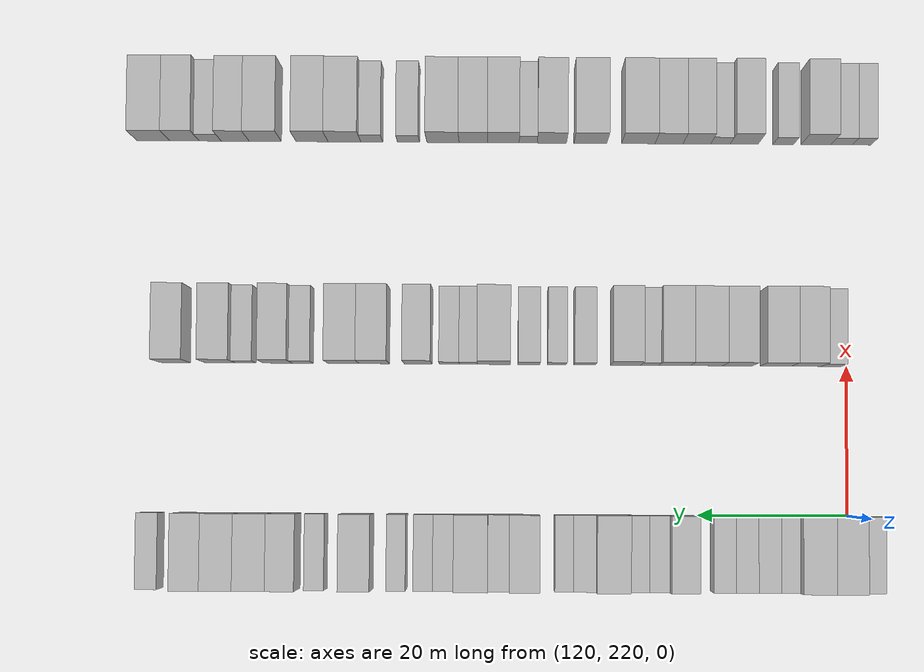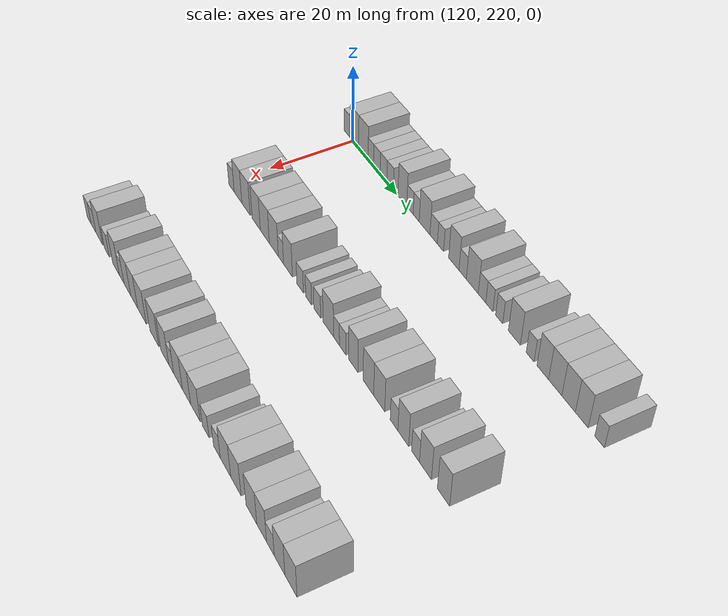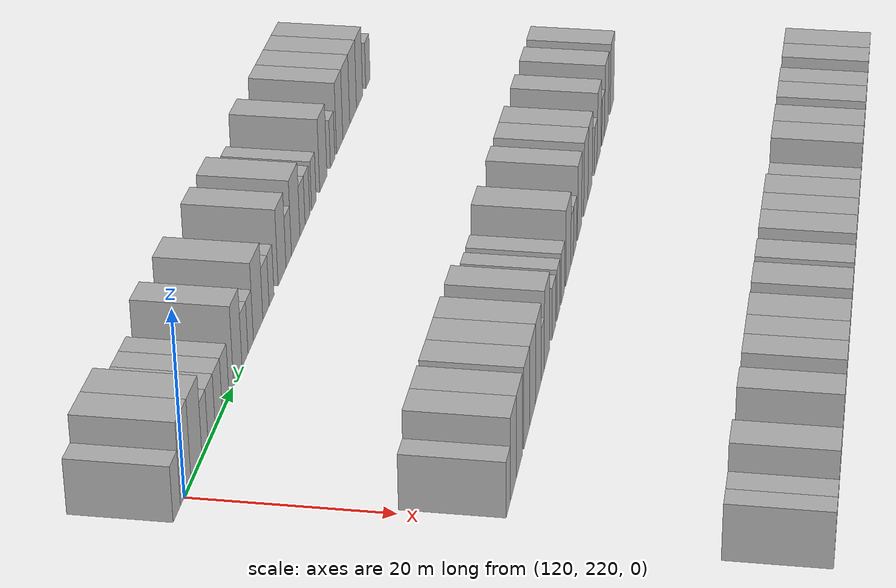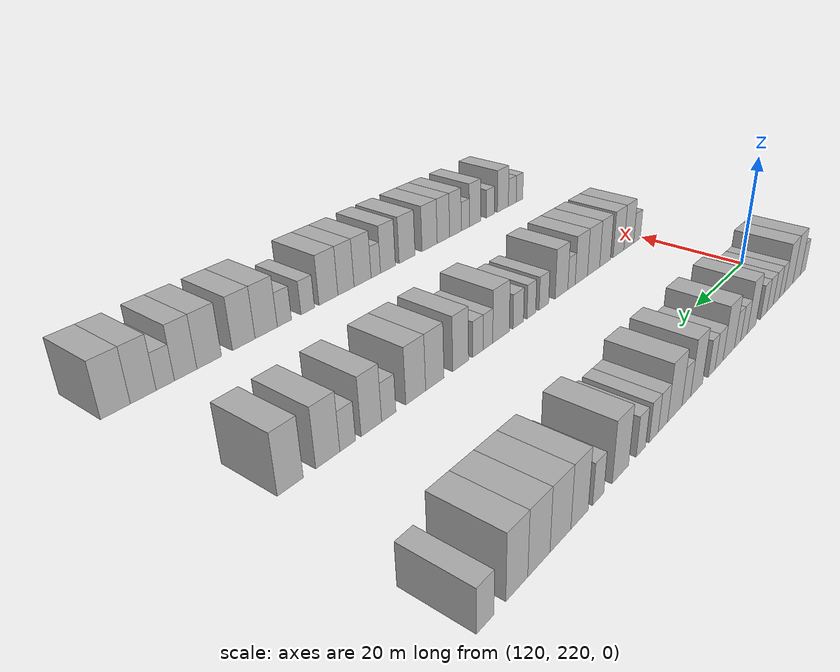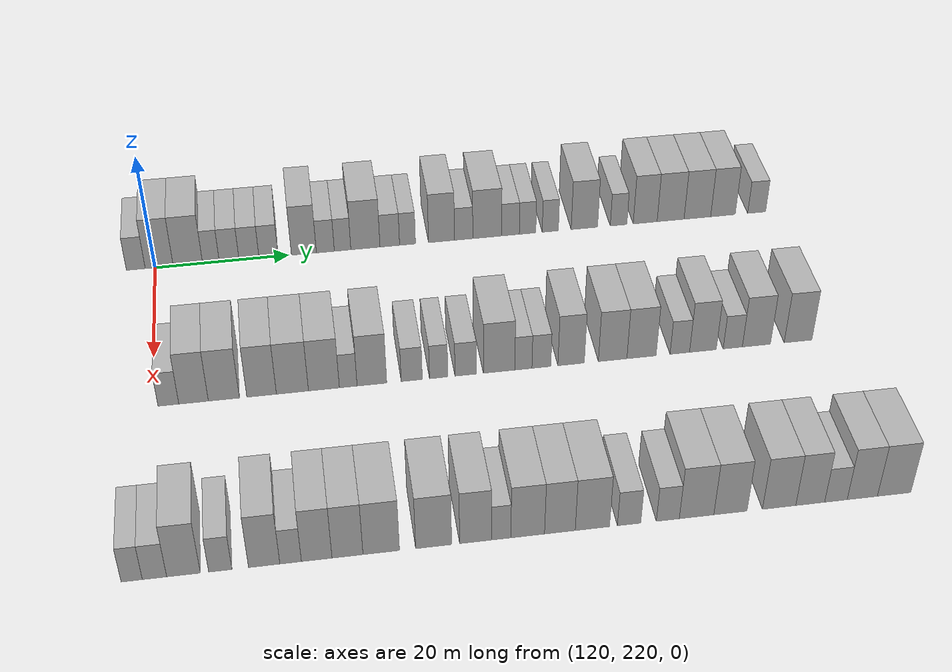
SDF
<sdf version="1.6">
 <world name="default">
  <model name="building_846">
   <static>1</static>
   <pose>115.0000 217.1737 0 0.000000 0.000000 0.000000</pose>
   <link name="link">
    <pose>0 0 3.00 0 0 0</pose>
    <collision name="collision"><geometry><box><size>10.0000 2.7691 6.0000</size></box></geometry></collision>
    <visual name="visual">
     <cast_shadows>0</cast_shadows>
     <geometry><box><size>10.0000 2.7691 6.0000</size></box></geometry>
     <material>
      <script>
       <uri>model://HANNAS_wall/materials/scripts</uri>
       <uri>model://HANNAS_wall/materials/textures</uri>
       <name>vrc/HANNAS_wall</name>
      </script>
     </material>
    </visual>
   </link>
  </model>
  <model name="building_847">
   <static>1</static>
   <pose>115.0000 220.6218 0 0.000000 0.000000 0.000000</pose>
   <link name="link">
    <pose>0 0 4.50 0 0 0</pose>
    <collision name="collision"><geometry><box><size>10.0000 4.1270 9.0000</size></box></geometry></collision>
    <visual name="visual">
     <cast_shadows>0</cast_shadows>
     <geometry><box><size>10.0000 4.1270 9.0000</size></box></geometry>
     <material>
      <script>
       <uri>model://HANNAS_wall/materials/scripts</uri>
       <uri>model://HANNAS_wall/materials/textures</uri>
       <name>vrc/HANNAS_wall</name>
      </script>
     </material>
    </visual>
   </link>
  </model>
  <model name="building_848">
   <static>1</static>
   <pose>115.0000 224.8613 0 0.000000 0.000000 0.000000</pose>
   <link name="link">
    <pose>0 0 4.50 0 0 0</pose>
    <collision name="collision"><geometry><box><size>10.0000 4.3520 9.0000</size></box></geometry></collision>
    <visual name="visual">
     <cast_shadows>0</cast_shadows>
     <geometry><box><size>10.0000 4.3520 9.0000</size></box></geometry>
     <material>
      <script>
       <uri>model://HANNAS_wall/materials/scripts</uri>
       <uri>model://HANNAS_wall/materials/textures</uri>
       <name>vrc/HANNAS_wall</name>
      </script>
     </material>
    </visual>
   </link>
  </model>
  <model name="building_849">
   <static>1</static>
   <pose>115.0000 228.2766 0 0.000000 0.000000 0.000000</pose>
   <link name="link">
    <pose>0 0 3.00 0 0 0</pose>
    <collision name="collision"><geometry><box><size>10.0000 2.4786 6.0000</size></box></geometry></collision>
    <visual name="visual">
     <cast_shadows>0</cast_shadows>
     <geometry><box><size>10.0000 2.4786 6.0000</size></box></geometry>
     <material>
      <script>
       <uri>model://HANNAS_wall/materials/scripts</uri>
       <uri>model://HANNAS_wall/materials/textures</uri>
       <name>vrc/HANNAS_wall</name>
      </script>
     </material>
    </visual>
   </link>
  </model>
  <model name="building_850">
   <static>1</static>
   <pose>115.0000 230.9907 0 0.000000 0.000000 0.000000</pose>
   <link name="link">
    <pose>0 0 3.00 0 0 0</pose>
    <collision name="collision"><geometry><box><size>10.0000 2.9495 6.0000</size></box></geometry></collision>
    <visual name="visual">
     <cast_shadows>0</cast_shadows>
     <geometry><box><size>10.0000 2.9495 6.0000</size></box></geometry>
     <material>
      <script>
       <uri>model://HANNAS_wall/materials/scripts</uri>
       <uri>model://HANNAS_wall/materials/textures</uri>
       <name>vrc/HANNAS_wall</name>
      </script>
     </material>
    </visual>
   </link>
  </model>
  <model name="building_851">
   <static>1</static>
   <pose>115.0000 233.9601 0 0.000000 0.000000 0.000000</pose>
   <link name="link">
    <pose>0 0 3.00 0 0 0</pose>
    <collision name="collision"><geometry><box><size>10.0000 2.9893 6.0000</size></box></geometry></collision>
    <visual name="visual">
     <cast_shadows>0</cast_shadows>
     <geometry><box><size>10.0000 2.9893 6.0000</size></box></geometry>
     <material>
      <script>
       <uri>model://HANNAS_wall/materials/scripts</uri>
       <uri>model://HANNAS_wall/materials/textures</uri>
       <name>vrc/HANNAS_wall</name>
      </script>
     </material>
    </visual>
   </link>
  </model>
  <model name="building_852">
   <static>1</static>
   <pose>115.0000 236.8845 0 0.000000 0.000000 0.000000</pose>
   <link name="link">
    <pose>0 0 3.00 0 0 0</pose>
    <collision name="collision"><geometry><box><size>10.0000 2.8595 6.0000</size></box></geometry></collision>
    <visual name="visual">
     <cast_shadows>0</cast_shadows>
     <geometry><box><size>10.0000 2.8595 6.0000</size></box></geometry>
     <material>
      <script>
       <uri>model://HANNAS_wall/materials/scripts</uri>
       <uri>model://HANNAS_wall/materials/textures</uri>
       <name>vrc/HANNAS_wall</name>
      </script>
     </material>
    </visual>
   </link>
  </model>
  <model name="building_853">
   <static>1</static>
   <pose>115.0000 242.1926 0 0.000000 0.000000 0.000000</pose>
   <link name="link">
    <pose>0 0 4.50 0 0 0</pose>
    <collision name="collision"><geometry><box><size>10.0000 3.7566 9.0000</size></box></geometry></collision>
    <visual name="visual">
     <cast_shadows>0</cast_shadows>
     <geometry><box><size>10.0000 3.7566 9.0000</size></box></geometry>
     <material>
      <script>
       <uri>model://HANNAS_wall/materials/scripts</uri>
       <uri>model://HANNAS_wall/materials/textures</uri>
       <name>vrc/HANNAS_wall</name>
      </script>
     </material>
    </visual>
   </link>
  </model>
  <model name="building_854">
   <static>1</static>
   <pose>115.0000 245.4258 0 0.000000 0.000000 0.000000</pose>
   <link name="link">
    <pose>0 0 3.00 0 0 0</pose>
    <collision name="collision"><geometry><box><size>10.0000 2.7099 6.0000</size></box></geometry></collision>
    <visual name="visual">
     <cast_shadows>0</cast_shadows>
     <geometry><box><size>10.0000 2.7099 6.0000</size></box></geometry>
     <material>
      <script>
       <uri>model://HANNAS_wall/materials/scripts</uri>
       <uri>model://HANNAS_wall/materials/textures</uri>
       <name>vrc/HANNAS_wall</name>
      </script>
     </material>
    </visual>
   </link>
  </model>
  <model name="building_855">
   <static>1</static>
   <pose>115.0000 248.0321 0 0.000000 0.000000 0.000000</pose>
   <link name="link">
    <pose>0 0 3.00 0 0 0</pose>
    <collision name="collision"><geometry><box><size>10.0000 2.5027 6.0000</size></box></geometry></collision>
    <visual name="visual">
     <cast_shadows>0</cast_shadows>
     <geometry><box><size>10.0000 2.5027 6.0000</size></box></geometry>
     <material>
      <script>
       <uri>model://HANNAS_wall/materials/scripts</uri>
       <uri>model://HANNAS_wall/materials/textures</uri>
       <name>vrc/HANNAS_wall</name>
      </script>
     </material>
    </visual>
   </link>
  </model>
  <model name="building_856">
   <static>1</static>
   <pose>115.0000 251.4940 0 0.000000 0.000000 0.000000</pose>
   <link name="link">
    <pose>0 0 4.50 0 0 0</pose>
    <collision name="collision"><geometry><box><size>10.0000 4.4212 9.0000</size></box></geometry></collision>
    <visual name="visual">
     <cast_shadows>0</cast_shadows>
     <geometry><box><size>10.0000 4.4212 9.0000</size></box></geometry>
     <material>
      <script>
       <uri>model://HANNAS_wall/materials/scripts</uri>
       <uri>model://HANNAS_wall/materials/textures</uri>
       <name>vrc/HANNAS_wall</name>
      </script>
     </material>
    </visual>
   </link>
  </model>
  <model name="building_857">
   <static>1</static>
   <pose>115.0000 255.1983 0 0.000000 0.000000 0.000000</pose>
   <link name="link">
    <pose>0 0 3.00 0 0 0</pose>
    <collision name="collision"><geometry><box><size>10.0000 2.9873 6.0000</size></box></geometry></collision>
    <visual name="visual">
     <cast_shadows>0</cast_shadows>
     <geometry><box><size>10.0000 2.9873 6.0000</size></box></geometry>
     <material>
      <script>
       <uri>model://HANNAS_wall/materials/scripts</uri>
       <uri>model://HANNAS_wall/materials/textures</uri>
       <name>vrc/HANNAS_wall</name>
      </script>
     </material>
    </visual>
   </link>
  </model>
  <model name="building_858">
   <static>1</static>
   <pose>115.0000 257.9084 0 0.000000 0.000000 0.000000</pose>
   <link name="link">
    <pose>0 0 3.00 0 0 0</pose>
    <collision name="collision"><geometry><box><size>10.0000 2.4329 6.0000</size></box></geometry></collision>
    <visual name="visual">
     <cast_shadows>0</cast_shadows>
     <geometry><box><size>10.0000 2.4329 6.0000</size></box></geometry>
     <material>
      <script>
       <uri>model://HANNAS_wall/materials/scripts</uri>
       <uri>model://HANNAS_wall/materials/textures</uri>
       <name>vrc/HANNAS_wall</name>
      </script>
     </material>
    </visual>
   </link>
  </model>
  <model name="building_859">
   <static>1</static>
   <pose>115.0000 263.1187 0 0.000000 0.000000 0.000000</pose>
   <link name="link">
    <pose>0 0 4.50 0 0 0</pose>
    <collision name="collision"><geometry><box><size>10.0000 3.9876 9.0000</size></box></geometry></collision>
    <visual name="visual">
     <cast_shadows>0</cast_shadows>
     <geometry><box><size>10.0000 3.9876 9.0000</size></box></geometry>
     <material>
      <script>
       <uri>model://HANNAS_wall/materials/scripts</uri>
       <uri>model://HANNAS_wall/materials/textures</uri>
       <name>vrc/HANNAS_wall</name>
      </script>
     </material>
    </visual>
   </link>
  </model>
  <model name="building_860">
   <static>1</static>
   <pose>115.0000 266.5162 0 0.000000 0.000000 0.000000</pose>
   <link name="link">
    <pose>0 0 3.00 0 0 0</pose>
    <collision name="collision"><geometry><box><size>10.0000 2.8076 6.0000</size></box></geometry></collision>
    <visual name="visual">
     <cast_shadows>0</cast_shadows>
     <geometry><box><size>10.0000 2.8076 6.0000</size></box></geometry>
     <material>
      <script>
       <uri>model://HANNAS_wall/materials/scripts</uri>
       <uri>model://HANNAS_wall/materials/textures</uri>
       <name>vrc/HANNAS_wall</name>
      </script>
     </material>
    </visual>
   </link>
  </model>
  <model name="building_861">
   <static>1</static>
   <pose>115.0000 270.1420 0 0.000000 0.000000 0.000000</pose>
   <link name="link">
    <pose>0 0 4.50 0 0 0</pose>
    <collision name="collision"><geometry><box><size>10.0000 4.4441 9.0000</size></box></geometry></collision>
    <visual name="visual">
     <cast_shadows>0</cast_shadows>
     <geometry><box><size>10.0000 4.4441 9.0000</size></box></geometry>
     <material>
      <script>
       <uri>model://HANNAS_wall/materials/scripts</uri>
       <uri>model://HANNAS_wall/materials/textures</uri>
       <name>vrc/HANNAS_wall</name>
      </script>
     </material>
    </visual>
   </link>
  </model>
  <model name="building_862">
   <static>1</static>
   <pose>115.0000 273.7424 0 0.000000 0.000000 0.000000</pose>
   <link name="link">
    <pose>0 0 3.00 0 0 0</pose>
    <collision name="collision"><geometry><box><size>10.0000 2.7567 6.0000</size></box></geometry></collision>
    <visual name="visual">
     <cast_shadows>0</cast_shadows>
     <geometry><box><size>10.0000 2.7567 6.0000</size></box></geometry>
     <material>
      <script>
       <uri>model://HANNAS_wall/materials/scripts</uri>
       <uri>model://HANNAS_wall/materials/textures</uri>
       <name>vrc/HANNAS_wall</name>
      </script>
     </material>
    </visual>
   </link>
  </model>
  <model name="building_863">
   <static>1</static>
   <pose>115.0000 276.4007 0 0.000000 0.000000 0.000000</pose>
   <link name="link">
    <pose>0 0 3.00 0 0 0</pose>
    <collision name="collision"><geometry><box><size>10.0000 2.5599 6.0000</size></box></geometry></collision>
    <visual name="visual">
     <cast_shadows>0</cast_shadows>
     <geometry><box><size>10.0000 2.5599 6.0000</size></box></geometry>
     <material>
      <script>
       <uri>model://HANNAS_wall/materials/scripts</uri>
       <uri>model://HANNAS_wall/materials/textures</uri>
       <name>vrc/HANNAS_wall</name>
      </script>
     </material>
    </visual>
   </link>
  </model>
  <model name="building_864">
   <static>1</static>
   <pose>115.0000 279.9409 0 0.000000 0.000000 0.000000</pose>
   <link name="link">
    <pose>0 0 3.00 0 0 0</pose>
    <collision name="collision"><geometry><box><size>10.0000 2.5206 6.0000</size></box></geometry></collision>
    <visual name="visual">
     <cast_shadows>0</cast_shadows>
     <geometry><box><size>10.0000 2.5206 6.0000</size></box></geometry>
     <material>
      <script>
       <uri>model://HANNAS_wall/materials/scripts</uri>
       <uri>model://HANNAS_wall/materials/textures</uri>
       <name>vrc/HANNAS_wall</name>
      </script>
     </material>
    </visual>
   </link>
  </model>
  <model name="building_865">
   <static>1</static>
   <pose>115.0000 285.2702 0 0.000000 0.000000 0.000000</pose>
   <link name="link">
    <pose>0 0 4.50 0 0 0</pose>
    <collision name="collision"><geometry><box><size>10.0000 4.1380 9.0000</size></box></geometry></collision>
    <visual name="visual">
     <cast_shadows>0</cast_shadows>
     <geometry><box><size>10.0000 4.1380 9.0000</size></box></geometry>
     <material>
      <script>
       <uri>model://HANNAS_wall/materials/scripts</uri>
       <uri>model://HANNAS_wall/materials/textures</uri>
       <name>vrc/HANNAS_wall</name>
      </script>
     </material>
    </visual>
   </link>
  </model>
  <model name="building_866">
   <static>1</static>
   <pose>115.0000 290.6449 0 0.000000 0.000000 0.000000</pose>
   <link name="link">
    <pose>0 0 3.00 0 0 0</pose>
    <collision name="collision"><geometry><box><size>10.0000 2.6115 6.0000</size></box></geometry></collision>
    <visual name="visual">
     <cast_shadows>0</cast_shadows>
     <geometry><box><size>10.0000 2.6115 6.0000</size></box></geometry>
     <material>
      <script>
       <uri>model://HANNAS_wall/materials/scripts</uri>
       <uri>model://HANNAS_wall/materials/textures</uri>
       <name>vrc/HANNAS_wall</name>
      </script>
     </material>
    </visual>
   </link>
  </model>
  <model name="building_867">
   <static>1</static>
   <pose>115.0000 294.8424 0 0.000000 0.000000 0.000000</pose>
   <link name="link">
    <pose>0 0 4.50 0 0 0</pose>
    <collision name="collision"><geometry><box><size>10.0000 3.7835 9.0000</size></box></geometry></collision>
    <visual name="visual">
     <cast_shadows>0</cast_shadows>
     <geometry><box><size>10.0000 3.7835 9.0000</size></box></geometry>
     <material>
      <script>
       <uri>model://HANNAS_wall/materials/scripts</uri>
       <uri>model://HANNAS_wall/materials/textures</uri>
       <name>vrc/HANNAS_wall</name>
      </script>
     </material>
    </visual>
   </link>
  </model>
  <model name="building_868">
   <static>1</static>
   <pose>115.0000 298.8709 0 0.000000 0.000000 0.000000</pose>
   <link name="link">
    <pose>0 0 4.50 0 0 0</pose>
    <collision name="collision"><geometry><box><size>10.0000 4.2735 9.0000</size></box></geometry></collision>
    <visual name="visual">
     <cast_shadows>0</cast_shadows>
     <geometry><box><size>10.0000 4.2735 9.0000</size></box></geometry>
     <material>
      <script>
       <uri>model://HANNAS_wall/materials/scripts</uri>
       <uri>model://HANNAS_wall/materials/textures</uri>
       <name>vrc/HANNAS_wall</name>
      </script>
     </material>
    </visual>
   </link>
  </model>
  <model name="building_869">
   <static>1</static>
   <pose>115.0000 303.1274 0 0.000000 0.000000 0.000000</pose>
   <link name="link">
    <pose>0 0 4.50 0 0 0</pose>
    <collision name="collision"><geometry><box><size>10.0000 4.2394 9.0000</size></box></geometry></collision>
    <visual name="visual">
     <cast_shadows>0</cast_shadows>
     <geometry><box><size>10.0000 4.2394 9.0000</size></box></geometry>
     <material>
      <script>
       <uri>model://HANNAS_wall/materials/scripts</uri>
       <uri>model://HANNAS_wall/materials/textures</uri>
       <name>vrc/HANNAS_wall</name>
      </script>
     </material>
    </visual>
   </link>
  </model>
  <model name="building_870">
   <static>1</static>
   <pose>115.0000 307.2110 0 0.000000 0.000000 0.000000</pose>
   <link name="link">
    <pose>0 0 4.50 0 0 0</pose>
    <collision name="collision"><geometry><box><size>10.0000 3.9279 9.0000</size></box></geometry></collision>
    <visual name="visual">
     <cast_shadows>0</cast_shadows>
     <geometry><box><size>10.0000 3.9279 9.0000</size></box></geometry>
     <material>
      <script>
       <uri>model://HANNAS_wall/materials/scripts</uri>
       <uri>model://HANNAS_wall/materials/textures</uri>
       <name>vrc/HANNAS_wall</name>
      </script>
     </material>
    </visual>
   </link>
  </model>
  <model name="building_871">
   <static>1</static>
   <pose>115.0000 312.6115 0 0.000000 0.000000 0.000000</pose>
   <link name="link">
    <pose>0 0 3.00 0 0 0</pose>
    <collision name="collision"><geometry><box><size>10.0000 2.8730 6.0000</size></box></geometry></collision>
    <visual name="visual">
     <cast_shadows>0</cast_shadows>
     <geometry><box><size>10.0000 2.8730 6.0000</size></box></geometry>
     <material>
      <script>
       <uri>model://HANNAS_wall/materials/scripts</uri>
       <uri>model://HANNAS_wall/materials/textures</uri>
       <name>vrc/HANNAS_wall</name>
      </script>
     </material>
    </visual>
   </link>
  </model>
  <model name="building_1087">
   <static>1</static>
   <pose>145.0000 222.0685 0 0.000000 0.000000 0.000000</pose>
   <link name="link">
    <pose>0 0 3.00 0 0 0</pose>
    <collision name="collision"><geometry><box><size>10.0000 2.7782 6.0000</size></box></geometry></collision>
    <visual name="visual">
     <cast_shadows>0</cast_shadows>
     <geometry><box><size>10.0000 2.7782 6.0000</size></box></geometry>
     <material>
      <script>
       <uri>model://HANNAS_wall/materials/scripts</uri>
       <uri>model://HANNAS_wall/materials/textures</uri>
       <name>vrc/HANNAS_wall</name>
      </script>
     </material>
    </visual>
   </link>
  </model>
  <model name="building_1088">
   <static>1</static>
   <pose>145.0000 225.4406 0 0.000000 0.000000 0.000000</pose>
   <link name="link">
    <pose>0 0 4.50 0 0 0</pose>
    <collision name="collision"><geometry><box><size>10.0000 3.9660 9.0000</size></box></geometry></collision>
    <visual name="visual">
     <cast_shadows>0</cast_shadows>
     <geometry><box><size>10.0000 3.9660 9.0000</size></box></geometry>
     <material>
      <script>
       <uri>model://HANNAS_wall/materials/scripts</uri>
       <uri>model://HANNAS_wall/materials/textures</uri>
       <name>vrc/HANNAS_wall</name>
      </script>
     </material>
    </visual>
   </link>
  </model>
  <model name="building_1089">
   <static>1</static>
   <pose>145.0000 229.5148 0 0.000000 0.000000 0.000000</pose>
   <link name="link">
    <pose>0 0 4.50 0 0 0</pose>
    <collision name="collision"><geometry><box><size>10.0000 4.1824 9.0000</size></box></geometry></collision>
    <visual name="visual">
     <cast_shadows>0</cast_shadows>
     <geometry><box><size>10.0000 4.1824 9.0000</size></box></geometry>
     <material>
      <script>
       <uri>model://HANNAS_wall/materials/scripts</uri>
       <uri>model://HANNAS_wall/materials/textures</uri>
       <name>vrc/HANNAS_wall</name>
      </script>
     </material>
    </visual>
   </link>
  </model>
  <model name="building_1090">
   <static>1</static>
   <pose>145.0000 234.6078 0 0.000000 0.000000 0.000000</pose>
   <link name="link">
    <pose>0 0 4.50 0 0 0</pose>
    <collision name="collision"><geometry><box><size>10.0000 4.0036 9.0000</size></box></geometry></collision>
    <visual name="visual">
     <cast_shadows>0</cast_shadows>
     <geometry><box><size>10.0000 4.0036 9.0000</size></box></geometry>
     <material>
      <script>
       <uri>model://HANNAS_wall/materials/scripts</uri>
       <uri>model://HANNAS_wall/materials/textures</uri>
       <name>vrc/HANNAS_wall</name>
      </script>
     </material>
    </visual>
   </link>
  </model>
  <model name="building_1091">
   <static>1</static>
   <pose>145.0000 238.7883 0 0.000000 0.000000 0.000000</pose>
   <link name="link">
    <pose>0 0 4.50 0 0 0</pose>
    <collision name="collision"><geometry><box><size>10.0000 4.3575 9.0000</size></box></geometry></collision>
    <visual name="visual">
     <cast_shadows>0</cast_shadows>
     <geometry><box><size>10.0000 4.3575 9.0000</size></box></geometry>
     <material>
      <script>
       <uri>model://HANNAS_wall/materials/scripts</uri>
       <uri>model://HANNAS_wall/materials/textures</uri>
       <name>vrc/HANNAS_wall</name>
      </script>
     </material>
    </visual>
   </link>
  </model>
  <model name="building_1092">
   <static>1</static>
   <pose>145.0000 243.0774 0 0.000000 0.000000 0.000000</pose>
   <link name="link">
    <pose>0 0 4.50 0 0 0</pose>
    <collision name="collision"><geometry><box><size>10.0000 4.2206 9.0000</size></box></geometry></collision>
    <visual name="visual">
     <cast_shadows>0</cast_shadows>
     <geometry><box><size>10.0000 4.2206 9.0000</size></box></geometry>
     <material>
      <script>
       <uri>model://HANNAS_wall/materials/scripts</uri>
       <uri>model://HANNAS_wall/materials/textures</uri>
       <name>vrc/HANNAS_wall</name>
      </script>
     </material>
    </visual>
   </link>
  </model>
  <model name="building_1093">
   <static>1</static>
   <pose>145.0000 246.4005 0 0.000000 0.000000 0.000000</pose>
   <link name="link">
    <pose>0 0 3.00 0 0 0</pose>
    <collision name="collision"><geometry><box><size>10.0000 2.4255 6.0000</size></box></geometry></collision>
    <visual name="visual">
     <cast_shadows>0</cast_shadows>
     <geometry><box><size>10.0000 2.4255 6.0000</size></box></geometry>
     <material>
      <script>
       <uri>model://HANNAS_wall/materials/scripts</uri>
       <uri>model://HANNAS_wall/materials/textures</uri>
       <name>vrc/HANNAS_wall</name>
      </script>
     </material>
    </visual>
   </link>
  </model>
  <model name="building_1094">
   <static>1</static>
   <pose>145.0000 249.6508 0 0.000000 0.000000 0.000000</pose>
   <link name="link">
    <pose>0 0 4.50 0 0 0</pose>
    <collision name="collision"><geometry><box><size>10.0000 4.0752 9.0000</size></box></geometry></collision>
    <visual name="visual">
     <cast_shadows>0</cast_shadows>
     <geometry><box><size>10.0000 4.0752 9.0000</size></box></geometry>
     <material>
      <script>
       <uri>model://HANNAS_wall/materials/scripts</uri>
       <uri>model://HANNAS_wall/materials/textures</uri>
       <name>vrc/HANNAS_wall</name>
      </script>
     </material>
    </visual>
   </link>
  </model>
  <model name="building_1095">
   <static>1</static>
   <pose>145.0000 255.1456 0 0.000000 0.000000 0.000000</pose>
   <link name="link">
    <pose>0 0 3.00 0 0 0</pose>
    <collision name="collision"><geometry><box><size>10.0000 2.9144 6.0000</size></box></geometry></collision>
    <visual name="visual">
     <cast_shadows>0</cast_shadows>
     <geometry><box><size>10.0000 2.9144 6.0000</size></box></geometry>
     <material>
      <script>
       <uri>model://HANNAS_wall/materials/scripts</uri>
       <uri>model://HANNAS_wall/materials/textures</uri>
       <name>vrc/HANNAS_wall</name>
      </script>
     </material>
    </visual>
   </link>
  </model>
  <model name="building_1096">
   <static>1</static>
   <pose>145.0000 258.8708 0 0.000000 0.000000 0.000000</pose>
   <link name="link">
    <pose>0 0 3.00 0 0 0</pose>
    <collision name="collision"><geometry><box><size>10.0000 2.5360 6.0000</size></box></geometry></collision>
    <visual name="visual">
     <cast_shadows>0</cast_shadows>
     <geometry><box><size>10.0000 2.5360 6.0000</size></box></geometry>
     <material>
      <script>
       <uri>model://HANNAS_wall/materials/scripts</uri>
       <uri>model://HANNAS_wall/materials/textures</uri>
       <name>vrc/HANNAS_wall</name>
      </script>
     </material>
    </visual>
   </link>
  </model>
  <model name="building_1097">
   <static>1</static>
   <pose>145.0000 262.6135 0 0.000000 0.000000 0.000000</pose>
   <link name="link">
    <pose>0 0 3.00 0 0 0</pose>
    <collision name="collision"><geometry><box><size>10.0000 2.9494 6.0000</size></box></geometry></collision>
    <visual name="visual">
     <cast_shadows>0</cast_shadows>
     <geometry><box><size>10.0000 2.9494 6.0000</size></box></geometry>
     <material>
      <script>
       <uri>model://HANNAS_wall/materials/scripts</uri>
       <uri>model://HANNAS_wall/materials/textures</uri>
       <name>vrc/HANNAS_wall</name>
      </script>
     </material>
    </visual>
   </link>
  </model>
  <model name="building_1098">
   <static>1</static>
   <pose>145.0000 267.2868 0 0.000000 0.000000 0.000000</pose>
   <link name="link">
    <pose>0 0 4.50 0 0 0</pose>
    <collision name="collision"><geometry><box><size>10.0000 4.3973 9.0000</size></box></geometry></collision>
    <visual name="visual">
     <cast_shadows>0</cast_shadows>
     <geometry><box><size>10.0000 4.3973 9.0000</size></box></geometry>
     <material>
      <script>
       <uri>model://HANNAS_wall/materials/scripts</uri>
       <uri>model://HANNAS_wall/materials/textures</uri>
       <name>vrc/HANNAS_wall</name>
      </script>
     </material>
    </visual>
   </link>
  </model>
  <model name="building_1099">
   <static>1</static>
   <pose>145.0000 270.6937 0 0.000000 0.000000 0.000000</pose>
   <link name="link">
    <pose>0 0 3.00 0 0 0</pose>
    <collision name="collision"><geometry><box><size>10.0000 2.4164 6.0000</size></box></geometry></collision>
    <visual name="visual">
     <cast_shadows>0</cast_shadows>
     <geometry><box><size>10.0000 2.4164 6.0000</size></box></geometry>
     <material>
      <script>
       <uri>model://HANNAS_wall/materials/scripts</uri>
       <uri>model://HANNAS_wall/materials/textures</uri>
       <name>vrc/HANNAS_wall</name>
      </script>
     </material>
    </visual>
   </link>
  </model>
  <model name="building_1100">
   <static>1</static>
   <pose>145.0000 273.2311 0 0.000000 0.000000 0.000000</pose>
   <link name="link">
    <pose>0 0 3.00 0 0 0</pose>
    <collision name="collision"><geometry><box><size>10.0000 2.6584 6.0000</size></box></geometry></collision>
    <visual name="visual">
     <cast_shadows>0</cast_shadows>
     <geometry><box><size>10.0000 2.6584 6.0000</size></box></geometry>
     <material>
      <script>
       <uri>model://HANNAS_wall/materials/scripts</uri>
       <uri>model://HANNAS_wall/materials/textures</uri>
       <name>vrc/HANNAS_wall</name>
      </script>
     </material>
    </visual>
   </link>
  </model>
  <model name="building_1101">
   <static>1</static>
   <pose>145.0000 277.4280 0 0.000000 0.000000 0.000000</pose>
   <link name="link">
    <pose>0 0 4.50 0 0 0</pose>
    <collision name="collision"><geometry><box><size>10.0000 3.7355 9.0000</size></box></geometry></collision>
    <visual name="visual">
     <cast_shadows>0</cast_shadows>
     <geometry><box><size>10.0000 3.7355 9.0000</size></box></geometry>
     <material>
      <script>
       <uri>model://HANNAS_wall/materials/scripts</uri>
       <uri>model://HANNAS_wall/materials/textures</uri>
       <name>vrc/HANNAS_wall</name>
      </script>
     </material>
    </visual>
   </link>
  </model>
  <model name="building_1102">
   <static>1</static>
   <pose>145.0000 283.3246 0 0.000000 0.000000 0.000000</pose>
   <link name="link">
    <pose>0 0 4.50 0 0 0</pose>
    <collision name="collision"><geometry><box><size>10.0000 4.0578 9.0000</size></box></geometry></collision>
    <visual name="visual">
     <cast_shadows>0</cast_shadows>
     <geometry><box><size>10.0000 4.0578 9.0000</size></box></geometry>
     <material>
      <script>
       <uri>model://HANNAS_wall/materials/scripts</uri>
       <uri>model://HANNAS_wall/materials/textures</uri>
       <name>vrc/HANNAS_wall</name>
      </script>
     </material>
    </visual>
   </link>
  </model>
  <model name="building_1103">
   <static>1</static>
   <pose>145.0000 287.4403 0 0.000000 0.000000 0.000000</pose>
   <link name="link">
    <pose>0 0 4.50 0 0 0</pose>
    <collision name="collision"><geometry><box><size>10.0000 4.1736 9.0000</size></box></geometry></collision>
    <visual name="visual">
     <cast_shadows>0</cast_shadows>
     <geometry><box><size>10.0000 4.1736 9.0000</size></box></geometry>
     <material>
      <script>
       <uri>model://HANNAS_wall/materials/scripts</uri>
       <uri>model://HANNAS_wall/materials/textures</uri>
       <name>vrc/HANNAS_wall</name>
      </script>
     </material>
    </visual>
   </link>
  </model>
  <model name="building_1104">
   <static>1</static>
   <pose>145.0000 292.9283 0 0.000000 0.000000 0.000000</pose>
   <link name="link">
    <pose>0 0 3.00 0 0 0</pose>
    <collision name="collision"><geometry><box><size>10.0000 2.8023 6.0000</size></box></geometry></collision>
    <visual name="visual">
     <cast_shadows>0</cast_shadows>
     <geometry><box><size>10.0000 2.8023 6.0000</size></box></geometry>
     <material>
      <script>
       <uri>model://HANNAS_wall/materials/scripts</uri>
       <uri>model://HANNAS_wall/materials/textures</uri>
       <name>vrc/HANNAS_wall</name>
      </script>
     </material>
    </visual>
   </link>
  </model>
  <model name="building_1105">
   <static>1</static>
   <pose>145.0000 296.2542 0 0.000000 0.000000 0.000000</pose>
   <link name="link">
    <pose>0 0 4.50 0 0 0</pose>
    <collision name="collision"><geometry><box><size>10.0000 3.8495 9.0000</size></box></geometry></collision>
    <visual name="visual">
     <cast_shadows>0</cast_shadows>
     <geometry><box><size>10.0000 3.8495 9.0000</size></box></geometry>
     <material>
      <script>
       <uri>model://HANNAS_wall/materials/scripts</uri>
       <uri>model://HANNAS_wall/materials/textures</uri>
       <name>vrc/HANNAS_wall</name>
      </script>
     </material>
    </visual>
   </link>
  </model>
  <model name="building_1106">
   <static>1</static>
   <pose>145.0000 300.5667 0 0.000000 0.000000 0.000000</pose>
   <link name="link">
    <pose>0 0 3.00 0 0 0</pose>
    <collision name="collision"><geometry><box><size>10.0000 2.7754 6.0000</size></box></geometry></collision>
    <visual name="visual">
     <cast_shadows>0</cast_shadows>
     <geometry><box><size>10.0000 2.7754 6.0000</size></box></geometry>
     <material>
      <script>
       <uri>model://HANNAS_wall/materials/scripts</uri>
       <uri>model://HANNAS_wall/materials/textures</uri>
       <name>vrc/HANNAS_wall</name>
      </script>
     </material>
    </visual>
   </link>
  </model>
  <model name="building_1107">
   <static>1</static>
   <pose>145.0000 303.9962 0 0.000000 0.000000 0.000000</pose>
   <link name="link">
    <pose>0 0 4.50 0 0 0</pose>
    <collision name="collision"><geometry><box><size>10.0000 4.0836 9.0000</size></box></geometry></collision>
    <visual name="visual">
     <cast_shadows>0</cast_shadows>
     <geometry><box><size>10.0000 4.0836 9.0000</size></box></geometry>
     <material>
      <script>
       <uri>model://HANNAS_wall/materials/scripts</uri>
       <uri>model://HANNAS_wall/materials/textures</uri>
       <name>vrc/HANNAS_wall</name>
      </script>
     </material>
    </visual>
   </link>
  </model>
  <model name="building_1108">
   <static>1</static>
   <pose>145.0000 310.0657 0 0.000000 0.000000 0.000000</pose>
   <link name="link">
    <pose>0 0 4.50 0 0 0</pose>
    <collision name="collision"><geometry><box><size>10.0000 4.0554 9.0000</size></box></geometry></collision>
    <visual name="visual">
     <cast_shadows>0</cast_shadows>
     <geometry><box><size>10.0000 4.0554 9.0000</size></box></geometry>
     <material>
      <script>
       <uri>model://HANNAS_wall/materials/scripts</uri>
       <uri>model://HANNAS_wall/materials/textures</uri>
       <name>vrc/HANNAS_wall</name>
      </script>
     </material>
    </visual>
   </link>
  </model>
  <model name="building_1313">
   <static>1</static>
   <pose>175.0000 217.7893 0 0.000000 0.000000 0.000000</pose>
   <link name="link">
    <pose>0 0 3.00 0 0 0</pose>
    <collision name="collision"><geometry><box><size>10.0000 2.5229 6.0000</size></box></geometry></collision>
    <visual name="visual">
     <cast_shadows>0</cast_shadows>
     <geometry><box><size>10.0000 2.5229 6.0000</size></box></geometry>
     <material>
      <script>
       <uri>model://HANNAS_wall/materials/scripts</uri>
       <uri>model://HANNAS_wall/materials/textures</uri>
       <name>vrc/HANNAS_wall</name>
      </script>
     </material>
    </visual>
   </link>
  </model>
  <model name="building_1314">
   <static>1</static>
   <pose>175.0000 220.5016 0 0.000000 0.000000 0.000000</pose>
   <link name="link">
    <pose>0 0 3.00 0 0 0</pose>
    <collision name="collision"><geometry><box><size>10.0000 2.9019 6.0000</size></box></geometry></collision>
    <visual name="visual">
     <cast_shadows>0</cast_shadows>
     <geometry><box><size>10.0000 2.9019 6.0000</size></box></geometry>
     <material>
      <script>
       <uri>model://HANNAS_wall/materials/scripts</uri>
       <uri>model://HANNAS_wall/materials/textures</uri>
       <name>vrc/HANNAS_wall</name>
      </script>
     </material>
    </visual>
   </link>
  </model>
  <model name="building_1315">
   <static>1</static>
   <pose>175.0000 223.9685 0 0.000000 0.000000 0.000000</pose>
   <link name="link">
    <pose>0 0 4.50 0 0 0</pose>
    <collision name="collision"><geometry><box><size>10.0000 4.0318 9.0000</size></box></geometry></collision>
    <visual name="visual">
     <cast_shadows>0</cast_shadows>
     <geometry><box><size>10.0000 4.0318 9.0000</size></box></geometry>
     <material>
      <script>
       <uri>model://HANNAS_wall/materials/scripts</uri>
       <uri>model://HANNAS_wall/materials/textures</uri>
       <name>vrc/HANNAS_wall</name>
      </script>
     </material>
    </visual>
   </link>
  </model>
  <model name="building_1316">
   <static>1</static>
   <pose>175.0000 228.3866 0 0.000000 0.000000 0.000000</pose>
   <link name="link">
    <pose>0 0 3.00 0 0 0</pose>
    <collision name="collision"><geometry><box><size>10.0000 2.8044 6.0000</size></box></geometry></collision>
    <visual name="visual">
     <cast_shadows>0</cast_shadows>
     <geometry><box><size>10.0000 2.8044 6.0000</size></box></geometry>
     <material>
      <script>
       <uri>model://HANNAS_wall/materials/scripts</uri>
       <uri>model://HANNAS_wall/materials/textures</uri>
       <name>vrc/HANNAS_wall</name>
      </script>
     </material>
    </visual>
   </link>
  </model>
  <model name="building_1317">
   <static>1</static>
   <pose>175.0000 233.6852 0 0.000000 0.000000 0.000000</pose>
   <link name="link">
    <pose>0 0 4.50 0 0 0</pose>
    <collision name="collision"><geometry><box><size>10.0000 3.7928 9.0000</size></box></geometry></collision>
    <visual name="visual">
     <cast_shadows>0</cast_shadows>
     <geometry><box><size>10.0000 3.7928 9.0000</size></box></geometry>
     <material>
      <script>
       <uri>model://HANNAS_wall/materials/scripts</uri>
       <uri>model://HANNAS_wall/materials/textures</uri>
       <name>vrc/HANNAS_wall</name>
      </script>
     </material>
    </visual>
   </link>
  </model>
  <model name="building_1318">
   <static>1</static>
   <pose>175.0000 236.8916 0 0.000000 0.000000 0.000000</pose>
   <link name="link">
    <pose>0 0 3.00 0 0 0</pose>
    <collision name="collision"><geometry><box><size>10.0000 2.6199 6.0000</size></box></geometry></collision>
    <visual name="visual">
     <cast_shadows>0</cast_shadows>
     <geometry><box><size>10.0000 2.6199 6.0000</size></box></geometry>
     <material>
      <script>
       <uri>model://HANNAS_wall/materials/scripts</uri>
       <uri>model://HANNAS_wall/materials/textures</uri>
       <name>vrc/HANNAS_wall</name>
      </script>
     </material>
    </visual>
   </link>
  </model>
  <model name="building_1319">
   <static>1</static>
   <pose>175.0000 240.0676 0 0.000000 0.000000 0.000000</pose>
   <link name="link">
    <pose>0 0 4.50 0 0 0</pose>
    <collision name="collision"><geometry><box><size>10.0000 3.7320 9.0000</size></box></geometry></collision>
    <visual name="visual">
     <cast_shadows>0</cast_shadows>
     <geometry><box><size>10.0000 3.7320 9.0000</size></box></geometry>
     <material>
      <script>
       <uri>model://HANNAS_wall/materials/scripts</uri>
       <uri>model://HANNAS_wall/materials/textures</uri>
       <name>vrc/HANNAS_wall</name>
      </script>
     </material>
    </visual>
   </link>
  </model>
  <model name="building_1320">
   <static>1</static>
   <pose>175.0000 243.8307 0 0.000000 0.000000 0.000000</pose>
   <link name="link">
    <pose>0 0 4.50 0 0 0</pose>
    <collision name="collision"><geometry><box><size>10.0000 3.7942 9.0000</size></box></geometry></collision>
    <visual name="visual">
     <cast_shadows>0</cast_shadows>
     <geometry><box><size>10.0000 3.7942 9.0000</size></box></geometry>
     <material>
      <script>
       <uri>model://HANNAS_wall/materials/scripts</uri>
       <uri>model://HANNAS_wall/materials/textures</uri>
       <name>vrc/HANNAS_wall</name>
      </script>
     </material>
    </visual>
   </link>
  </model>
  <model name="building_1321">
   <static>1</static>
   <pose>175.0000 247.9747 0 0.000000 0.000000 0.000000</pose>
   <link name="link">
    <pose>0 0 4.50 0 0 0</pose>
    <collision name="collision"><geometry><box><size>10.0000 4.4937 9.0000</size></box></geometry></collision>
    <visual name="visual">
     <cast_shadows>0</cast_shadows>
     <geometry><box><size>10.0000 4.4937 9.0000</size></box></geometry>
     <material>
      <script>
       <uri>model://HANNAS_wall/materials/scripts</uri>
       <uri>model://HANNAS_wall/materials/textures</uri>
       <name>vrc/HANNAS_wall</name>
      </script>
     </material>
    </visual>
   </link>
  </model>
  <model name="building_1322">
   <static>1</static>
   <pose>175.0000 254.4510 0 0.000000 0.000000 0.000000</pose>
   <link name="link">
    <pose>0 0 4.50 0 0 0</pose>
    <collision name="collision"><geometry><box><size>10.0000 4.4588 9.0000</size></box></geometry></collision>
    <visual name="visual">
     <cast_shadows>0</cast_shadows>
     <geometry><box><size>10.0000 4.4588 9.0000</size></box></geometry>
     <material>
      <script>
       <uri>model://HANNAS_wall/materials/scripts</uri>
       <uri>model://HANNAS_wall/materials/textures</uri>
       <name>vrc/HANNAS_wall</name>
      </script>
     </material>
    </visual>
   </link>
  </model>
  <model name="building_1323">
   <static>1</static>
   <pose>175.0000 259.6586 0 0.000000 0.000000 0.000000</pose>
   <link name="link">
    <pose>0 0 4.50 0 0 0</pose>
    <collision name="collision"><geometry><box><size>10.0000 3.9564 9.0000</size></box></geometry></collision>
    <visual name="visual">
     <cast_shadows>0</cast_shadows>
     <geometry><box><size>10.0000 3.9564 9.0000</size></box></geometry>
     <material>
      <script>
       <uri>model://HANNAS_wall/materials/scripts</uri>
       <uri>model://HANNAS_wall/materials/textures</uri>
       <name>vrc/HANNAS_wall</name>
      </script>
     </material>
    </visual>
   </link>
  </model>
  <model name="building_1324">
   <static>1</static>
   <pose>175.0000 262.8509 0 0.000000 0.000000 0.000000</pose>
   <link name="link">
    <pose>0 0 3.00 0 0 0</pose>
    <collision name="collision"><geometry><box><size>10.0000 2.4281 6.0000</size></box></geometry></collision>
    <visual name="visual">
     <cast_shadows>0</cast_shadows>
     <geometry><box><size>10.0000 2.4281 6.0000</size></box></geometry>
     <material>
      <script>
       <uri>model://HANNAS_wall/materials/scripts</uri>
       <uri>model://HANNAS_wall/materials/textures</uri>
       <name>vrc/HANNAS_wall</name>
      </script>
     </material>
    </visual>
   </link>
  </model>
  <model name="building_1325">
   <static>1</static>
   <pose>175.0000 266.1858 0 0.000000 0.000000 0.000000</pose>
   <link name="link">
    <pose>0 0 4.50 0 0 0</pose>
    <collision name="collision"><geometry><box><size>10.0000 4.2419 9.0000</size></box></geometry></collision>
    <visual name="visual">
     <cast_shadows>0</cast_shadows>
     <geometry><box><size>10.0000 4.2419 9.0000</size></box></geometry>
     <material>
      <script>
       <uri>model://HANNAS_wall/materials/scripts</uri>
       <uri>model://HANNAS_wall/materials/textures</uri>
       <name>vrc/HANNAS_wall</name>
      </script>
     </material>
    </visual>
   </link>
  </model>
  <model name="building_1326">
   <static>1</static>
   <pose>175.0000 270.2458 0 0.000000 0.000000 0.000000</pose>
   <link name="link">
    <pose>0 0 4.50 0 0 0</pose>
    <collision name="collision"><geometry><box><size>10.0000 3.8780 9.0000</size></box></geometry></collision>
    <visual name="visual">
     <cast_shadows>0</cast_shadows>
     <geometry><box><size>10.0000 3.8780 9.0000</size></box></geometry>
     <material>
      <script>
       <uri>model://HANNAS_wall/materials/scripts</uri>
       <uri>model://HANNAS_wall/materials/textures</uri>
       <name>vrc/HANNAS_wall</name>
      </script>
     </material>
    </visual>
   </link>
  </model>
  <model name="building_1327">
   <static>1</static>
   <pose>175.0000 274.3605 0 0.000000 0.000000 0.000000</pose>
   <link name="link">
    <pose>0 0 4.50 0 0 0</pose>
    <collision name="collision"><geometry><box><size>10.0000 4.3516 9.0000</size></box></geometry></collision>
    <visual name="visual">
     <cast_shadows>0</cast_shadows>
     <geometry><box><size>10.0000 4.3516 9.0000</size></box></geometry>
     <material>
      <script>
       <uri>model://HANNAS_wall/materials/scripts</uri>
       <uri>model://HANNAS_wall/materials/textures</uri>
       <name>vrc/HANNAS_wall</name>
      </script>
     </material>
    </visual>
   </link>
  </model>
  <model name="building_1328">
   <static>1</static>
   <pose>175.0000 279.0257 0 0.000000 0.000000 0.000000</pose>
   <link name="link">
    <pose>0 0 3.00 0 0 0</pose>
    <collision name="collision"><geometry><box><size>10.0000 2.9788 6.0000</size></box></geometry></collision>
    <visual name="visual">
     <cast_shadows>0</cast_shadows>
     <geometry><box><size>10.0000 2.9788 6.0000</size></box></geometry>
     <material>
      <script>
       <uri>model://HANNAS_wall/materials/scripts</uri>
       <uri>model://HANNAS_wall/materials/textures</uri>
       <name>vrc/HANNAS_wall</name>
      </script>
     </material>
    </visual>
   </link>
  </model>
  <model name="building_1329">
   <static>1</static>
   <pose>175.0000 283.9886 0 0.000000 0.000000 0.000000</pose>
   <link name="link">
    <pose>0 0 3.00 0 0 0</pose>
    <collision name="collision"><geometry><box><size>10.0000 2.9470 6.0000</size></box></geometry></collision>
    <visual name="visual">
     <cast_shadows>0</cast_shadows>
     <geometry><box><size>10.0000 2.9470 6.0000</size></box></geometry>
     <material>
      <script>
       <uri>model://HANNAS_wall/materials/scripts</uri>
       <uri>model://HANNAS_wall/materials/textures</uri>
       <name>vrc/HANNAS_wall</name>
      </script>
     </material>
    </visual>
   </link>
  </model>
  <model name="building_1330">
   <static>1</static>
   <pose>175.0000 287.6829 0 0.000000 0.000000 0.000000</pose>
   <link name="link">
    <pose>0 0 4.50 0 0 0</pose>
    <collision name="collision"><geometry><box><size>10.0000 4.4417 9.0000</size></box></geometry></collision>
    <visual name="visual">
     <cast_shadows>0</cast_shadows>
     <geometry><box><size>10.0000 4.4417 9.0000</size></box></geometry>
     <material>
      <script>
       <uri>model://HANNAS_wall/materials/scripts</uri>
       <uri>model://HANNAS_wall/materials/textures</uri>
       <name>vrc/HANNAS_wall</name>
      </script>
     </material>
    </visual>
   </link>
  </model>
  <model name="building_1331">
   <static>1</static>
   <pose>175.0000 292.0555 0 0.000000 0.000000 0.000000</pose>
   <link name="link">
    <pose>0 0 4.50 0 0 0</pose>
    <collision name="collision"><geometry><box><size>10.0000 4.3035 9.0000</size></box></geometry></collision>
    <visual name="visual">
     <cast_shadows>0</cast_shadows>
     <geometry><box><size>10.0000 4.3035 9.0000</size></box></geometry>
     <material>
      <script>
       <uri>model://HANNAS_wall/materials/scripts</uri>
       <uri>model://HANNAS_wall/materials/textures</uri>
       <name>vrc/HANNAS_wall</name>
      </script>
     </material>
    </visual>
   </link>
  </model>
  <model name="building_1332">
   <static>1</static>
   <pose>175.0000 298.3797 0 0.000000 0.000000 0.000000</pose>
   <link name="link">
    <pose>0 0 4.50 0 0 0</pose>
    <collision name="collision"><geometry><box><size>10.0000 4.3449 9.0000</size></box></geometry></collision>
    <visual name="visual">
     <cast_shadows>0</cast_shadows>
     <geometry><box><size>10.0000 4.3449 9.0000</size></box></geometry>
     <material>
      <script>
       <uri>model://HANNAS_wall/materials/scripts</uri>
       <uri>model://HANNAS_wall/materials/textures</uri>
       <name>vrc/HANNAS_wall</name>
      </script>
     </material>
    </visual>
   </link>
  </model>
  <model name="building_1333">
   <static>1</static>
   <pose>175.0000 302.4457 0 0.000000 0.000000 0.000000</pose>
   <link name="link">
    <pose>0 0 4.50 0 0 0</pose>
    <collision name="collision"><geometry><box><size>10.0000 3.7871 9.0000</size></box></geometry></collision>
    <visual name="visual">
     <cast_shadows>0</cast_shadows>
     <geometry><box><size>10.0000 3.7871 9.0000</size></box></geometry>
     <material>
      <script>
       <uri>model://HANNAS_wall/materials/scripts</uri>
       <uri>model://HANNAS_wall/materials/textures</uri>
       <name>vrc/HANNAS_wall</name>
      </script>
     </material>
    </visual>
   </link>
  </model>
  <model name="building_1334">
   <static>1</static>
   <pose>175.0000 305.8195 0 0.000000 0.000000 0.000000</pose>
   <link name="link">
    <pose>0 0 3.00 0 0 0</pose>
    <collision name="collision"><geometry><box><size>10.0000 2.9605 6.0000</size></box></geometry></collision>
    <visual name="visual">
     <cast_shadows>0</cast_shadows>
     <geometry><box><size>10.0000 2.9605 6.0000</size></box></geometry>
     <material>
      <script>
       <uri>model://HANNAS_wall/materials/scripts</uri>
       <uri>model://HANNAS_wall/materials/textures</uri>
       <name>vrc/HANNAS_wall</name>
      </script>
     </material>
    </visual>
   </link>
  </model>
  <model name="building_1335">
   <static>1</static>
   <pose>175.0000 309.2975 0 0.000000 0.000000 0.000000</pose>
   <link name="link">
    <pose>0 0 4.50 0 0 0</pose>
    <collision name="collision"><geometry><box><size>10.0000 3.9954 9.0000</size></box></geometry></collision>
    <visual name="visual">
     <cast_shadows>0</cast_shadows>
     <geometry><box><size>10.0000 3.9954 9.0000</size></box></geometry>
     <material>
      <script>
       <uri>model://HANNAS_wall/materials/scripts</uri>
       <uri>model://HANNAS_wall/materials/textures</uri>
       <name>vrc/HANNAS_wall</name>
      </script>
     </material>
    </visual>
   </link>
  </model>
  <model name="building_1336">
   <static>1</static>
   <pose>175.0000 313.5068 0 0.000000 0.000000 0.000000</pose>
   <link name="link">
    <pose>0 0 4.50 0 0 0</pose>
    <collision name="collision"><geometry><box><size>10.0000 4.4232 9.0000</size></box></geometry></collision>
    <visual name="visual">
     <cast_shadows>0</cast_shadows>
     <geometry><box><size>10.0000 4.4232 9.0000</size></box></geometry>
     <material>
      <script>
       <uri>model://HANNAS_wall/materials/scripts</uri>
       <uri>model://HANNAS_wall/materials/textures</uri>
       <name>vrc/HANNAS_wall</name>
      </script>
     </material>
    </visual>
   </link>
  </model>
 </world>
</sdf>
